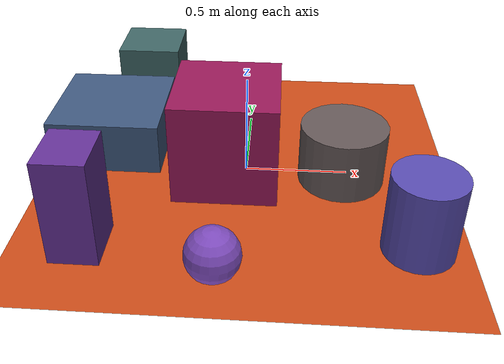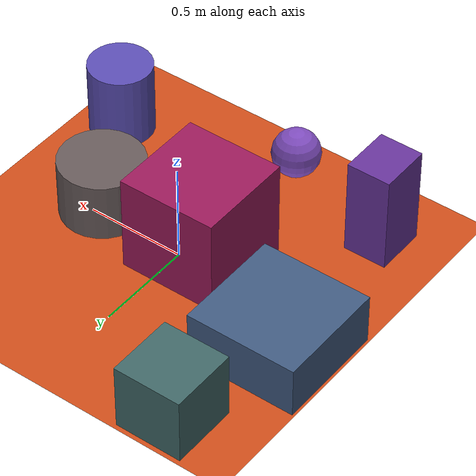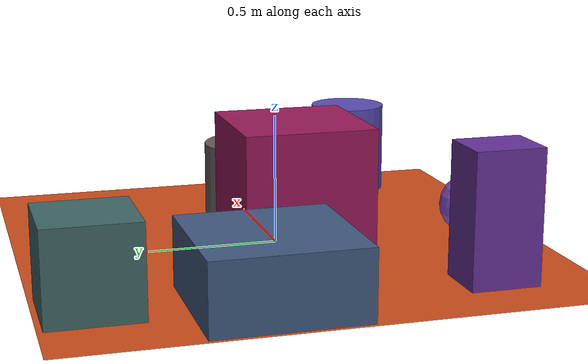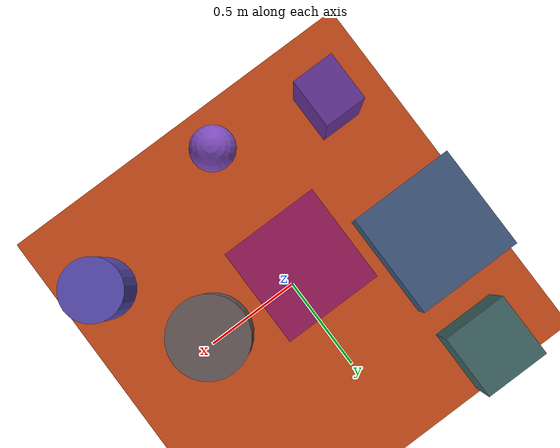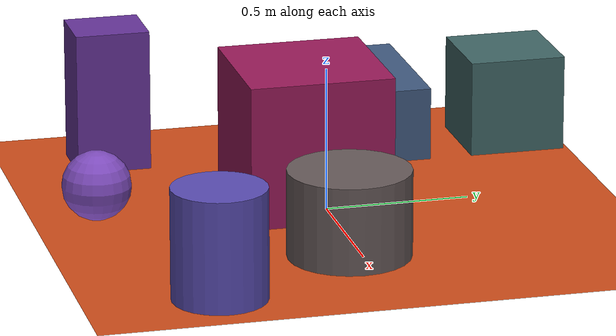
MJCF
<mujoco>
   <asset>
<texture type="skybox" builtin="gradient" rgb1="0.1 0.5 0.2" rgb2="0.4 0.6 0.4" width="256" height="256"/>
<texture name="checker_0" builtin="checker" type="2d" rgb1="0.3 0.2 0.8" rgb2="0.7 0.4 0.7" width="200" height="200"/>
<texture name="gradient_1" builtin="gradient" rgb1="0.3 0.0 0.5" rgb2="0.2 0.8 0.3" width="200" height="200"/>
<texture name="flat_2" builtin="flat" rgb1="0.4 0.2 0.6" rgb2="0.4 0.2 0.6"  width="200" height="200"/>
<texture name="checker_3" builtin="checker" type="2d" rgb1="0.4 0.2 0.4" rgb2="0.3 0.4 1.0" width="200" height="200"/>
<texture name="gradient_4" builtin="gradient" rgb1="0.6 0.0 0.3" rgb2="0.6 0.2 0.4" width="200" height="200"/>
<texture name="gradient_5" builtin="gradient" rgb1="0.3 0.0 0.4" rgb2="0.2 0.7 0.6" width="200" height="200"/>
<texture name="checker_6" builtin="checker" type="2d" rgb1="0.4 0.0 0.6" rgb2="0.4 0.7 0.1" width="200" height="200"/><material name="checker_0_mat" reflectance="0" texrepeat="10 10" texture="checker_0" texuniform="false" />
<material name="gradient_1_mat" reflectance="0" texture="gradient_1" texuniform="true"/>
<material name="flat_2_mat" reflectance="0" texture="flat_2" texuniform="true"/>
<material name="checker_3_mat" reflectance="0" texrepeat="6 6" texture="checker_3" texuniform="false" />
<material name="gradient_4_mat" reflectance="0" texture="gradient_4" texuniform="true"/>
<material name="gradient_5_mat" reflectance="0" texture="gradient_5" texuniform="true"/>
<material name="checker_6_mat" reflectance="0" texrepeat="7 7" texture="checker_6" texuniform="false" />
   </asset>

   <worldbody>
      <light diffuse=".9 .9 .9" pos="0 0 3" dir="0 0 -1"/>
     <geom type="plane" size="1 1 0.1" rgba="0.8 0.3 0.1 1"/>
<geom type="sphere" pos="-0.09 -0.78 0.12" size="0.12 0.12 0.12" material="checker_0_mat" />
<geom type="box" pos="-0.6 0.81 0.17" size="0.17 0.17 0.17" material="gradient_1_mat" />
<geom type="box" pos="-0.68 -0.62 0.25" size="0.11 0.13 0.25" material="flat_2_mat" />
<geom type="cylinder" pos="0.77 -0.55 0.19" size="0.16 0.19 0.19" material="checker_3_mat" />
<geom type="box" pos="-0.09 -0.05 0.25" size="0.25 0.25 0.25" material="gradient_4_mat" />
<geom type="box" pos="-0.71 0.21 0.13" size="0.28 0.28 0.13" material="gradient_5_mat" />
<geom type="cylinder" pos="0.47 -0.04 0.15" size="0.21 0.15 0.15" material="checker_6_mat" /><camera euler="60 0 180" fovy="60" name="camera_a" pos="0 -1.5 1"></camera>   </worldbody>
</mujoco>
